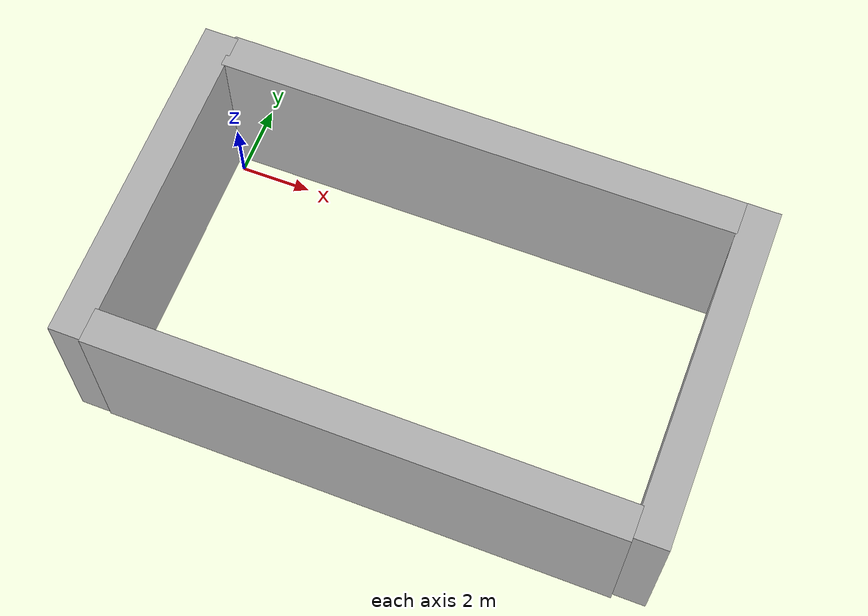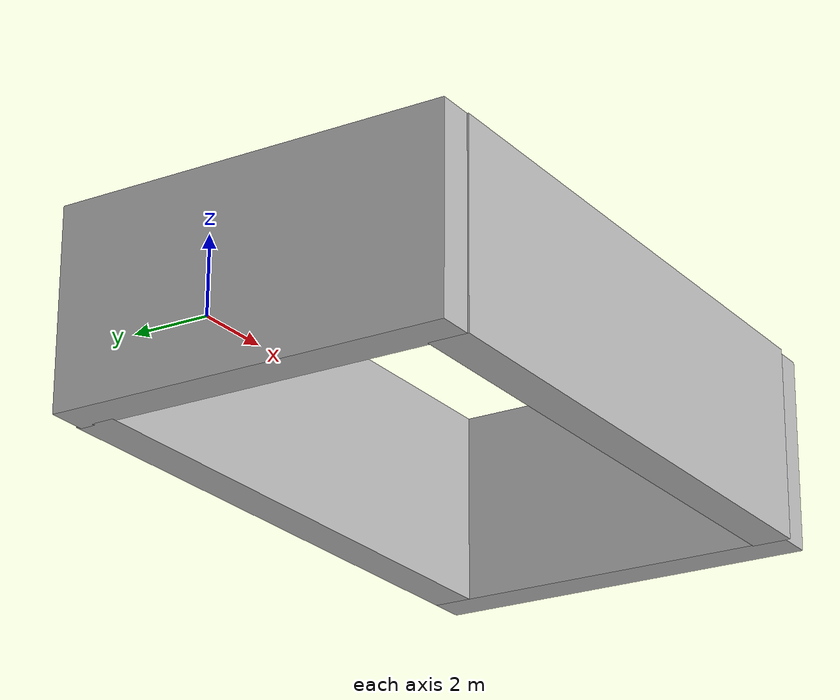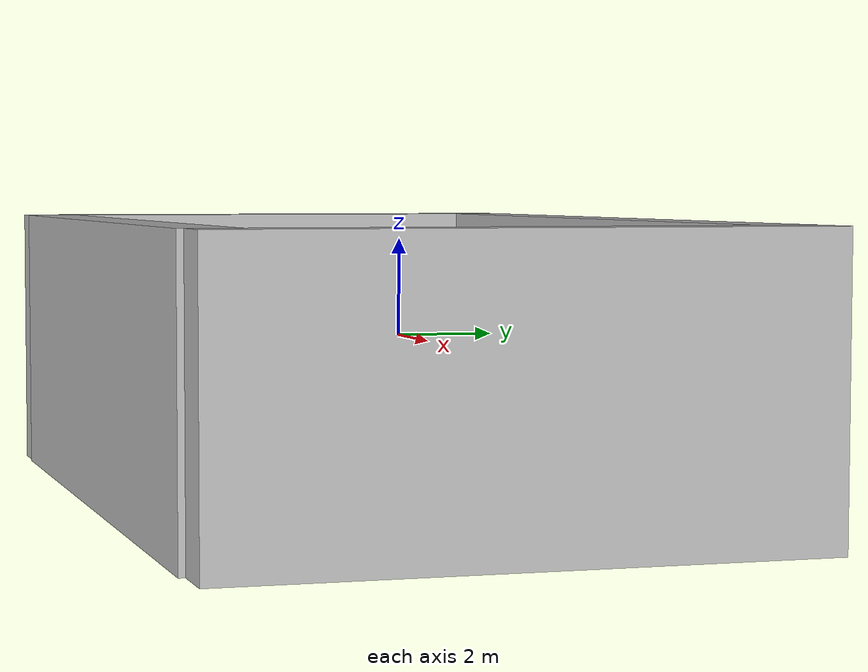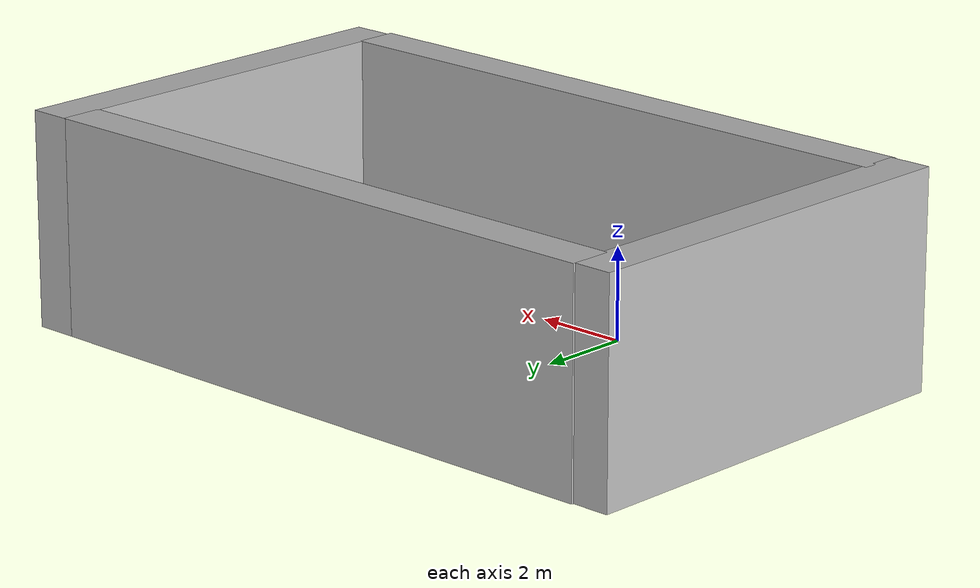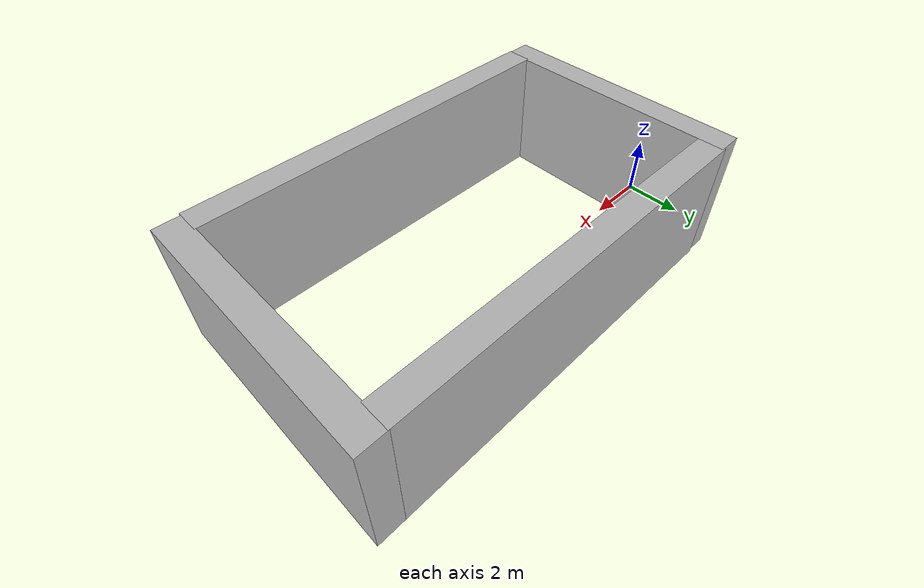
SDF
<?xml version="1.0" ?>
<sdf version="1.4">
  <model name="wall_adr">
    <static>0</static>
    <link name="link0">
			<pose frame=''>6.35 2.1 0 0 -0 0</pose>
        <collision name="box_collision">
          <geometry>
            <box>
              <size>15 1 5</size>
            </box>
          </geometry>
      <surface>
        <friction>
          <ode>
            <mu>0.99</mu>
            <mu2>0.99</mu2>
          </ode>
        </friction>
      </surface>
        </collision>

   	<visual name="visual">
          <geometry>
            <box>
              <size>15 1 5</size>
            </box>
          </geometry>
        <material>
          <script>
            <uri>model://wall_adr/materials/scripts</uri>
            <uri>model://wall_adr/materials/textures</uri>
            <name>leftside</name>
          </script>
        </material>
        <pose frame=''>0 0 0. 0 -0 0</pose>
        <cast_shadows>1</cast_shadows>
        <transparency>0.0</transparency>
        </visual>
      <sensor name="contact_sensor_1" type="contact">
	<plugin name="my_contact_plugin" filename="libgazebo_ros_bumper.so"/>
          <contact>
            <collision>box_collision</collision>
          </contact>
      </sensor>
    </link>

    <link name="link1">
			<pose frame=''>6.35 -7 0 0 -0 3.14</pose>
        <collision name="box_collision">
          <geometry>
            <box>
              <size>15 1 5</size>
            </box>
          </geometry>
      <surface>
        <friction>
          <ode>
            <mu>0.99</mu>
            <mu2>0.99</mu2>
          </ode>
        </friction>
      </surface>
        </collision>

   	<visual name="visual">
          <geometry>
            <box>
              <size>15 1 5</size>
            </box>
          </geometry>
        <material>
          <script>
            <uri>model://wall_adr/materials/scripts</uri>
            <uri>model://wall_adr/materials/textures</uri>
            <name>rightside</name>
          </script>
        </material>
        <pose frame=''>0 0 0. 0 -0 0</pose>
        <cast_shadows>1</cast_shadows>
        <transparency>0.0</transparency>
        </visual>
      <sensor name="contact_sensor_1" type="contact">
	<plugin name="my_contact_plugin" filename="libgazebo_ros_bumper.so"/>
          <contact>
            <collision>box_collision</collision>
          </contact>
      </sensor>
    </link>

    <link name="link2">
			<pose frame=''>14.3 -2.4 0 0 -0 1.57</pose>
        <collision name="box_collision">
          <geometry>
            <box>
              <size>10 1 5</size>
            </box>
          </geometry>
      <surface>
        <friction>
          <ode>
            <mu>0.99</mu>
            <mu2>0.99</mu2>
          </ode>
        </friction>
      </surface>
        </collision>

   	<visual name="visual">
          <geometry>
            <box>
              <size>10 1 5</size>
            </box>
          </geometry>
        <material>
          <script>
            <uri>model://wall_adr/materials/scripts</uri>
            <uri>model://wall_adr/materials/textures</uri>
            <name>frontside</name>
          </script>
        </material>
        <pose frame=''>0 0 0. 0 -0 0</pose>
        <cast_shadows>1</cast_shadows>
        <transparency>0.0</transparency>
        </visual>
      <sensor name="contact_sensor_1" type="contact">
	<plugin name="my_contact_plugin" filename="libgazebo_ros_bumper.so"/>
          <contact>
            <collision>box_collision</collision>
          </contact>
      </sensor>
    </link>

    <link name="link3">
			<pose frame=''>-1.55 -2.45 0 0 -0 1.57</pose>
        <collision name="box_collision">
          <geometry>
            <box>
              <size>10 1 5</size>
            </box>
          </geometry>
      <surface>
        <friction>
          <ode>
            <mu>0.99</mu>
            <mu2>0.99</mu2>
          </ode>
        </friction>
      </surface>
        </collision>

   	<visual name="visual">
          <geometry>
            <box>
              <size>10 1 5</size>
            </box>
          </geometry>
        <material>
          <script>
            <uri>model://wall_adr/materials/scripts</uri>
            <uri>model://wall_adr/materials/textures</uri>
            <name>backside</name>
          </script>
        </material>
        <pose frame=''>0 0 0. 0 -0 0</pose>
        <cast_shadows>1</cast_shadows>
        <transparency>0.0</transparency>
        </visual>
      <sensor name="contact_sensor_1" type="contact">
	<plugin name="my_contact_plugin" filename="libgazebo_ros_bumper.so"/>
          <contact>
            <collision>box_collision</collision>
          </contact>
      </sensor>
    </link>

		    <plugin name="model_push" filename="libgazebo_moving_platform.so">
        <robotNamespace>/</robotNamespace>
      </plugin>
  </model>
</sdf>
